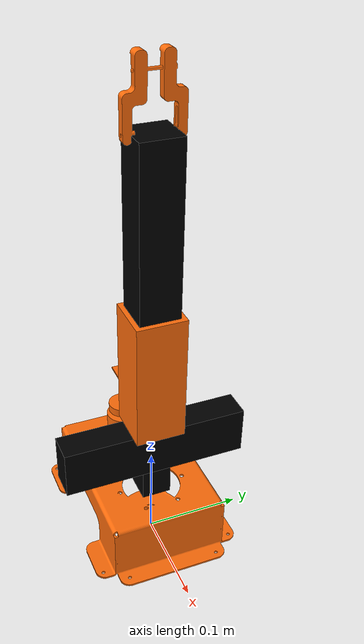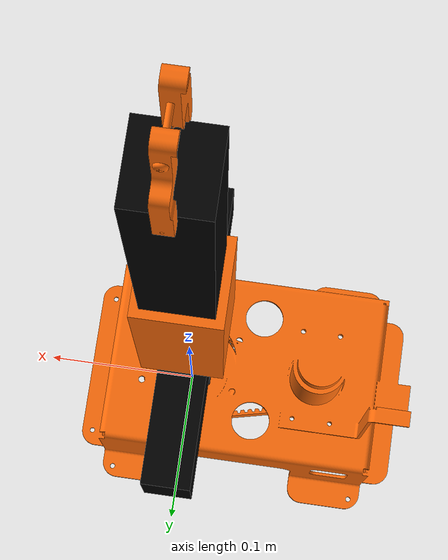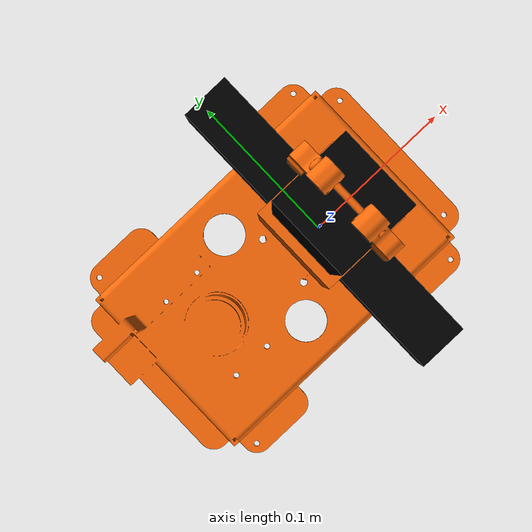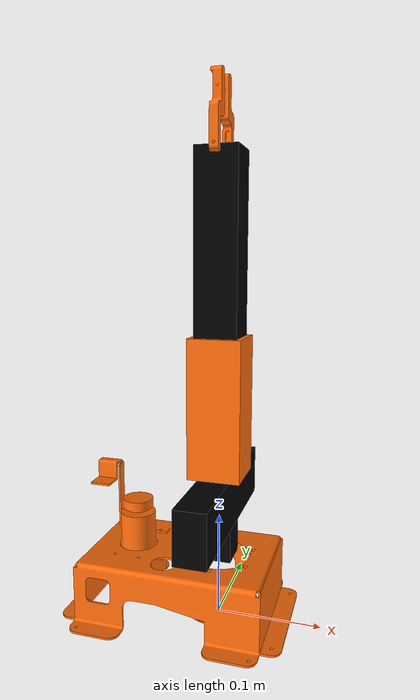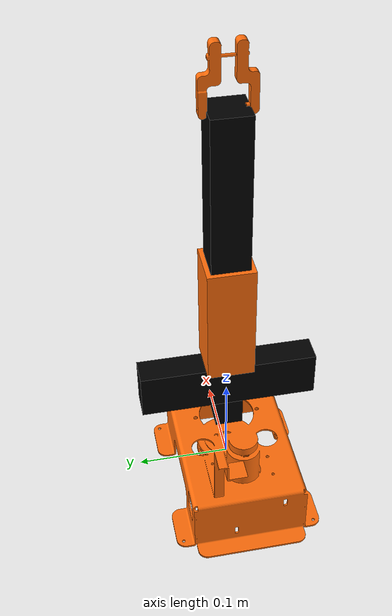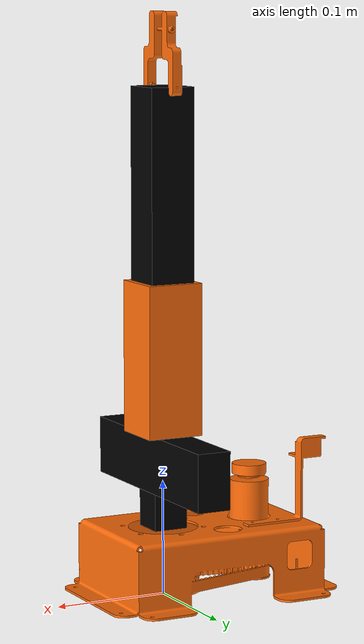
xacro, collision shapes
<?xml version="1.0"?>
<robot name="robotarm" xmlns:xacro="http://www.ros.org/wiki/xacro">

  <xacro:property name="PI" value="3.14159265"/>
  <xacro:property name="PI_half" value="1.57079632"/>
  <xacro:property name="link0_mass" value="3"/>
  <xacro:property name="link0_x" value="0.15"/>
  <xacro:property name="link0_y" value="0.2"/>
  <xacro:property name="link0_z" value="0.06"/>
  <xacro:property name="link1_mass" value="0.8"/>
  <xacro:property name="link1_x" value="0.11"/>
  <xacro:property name="link1_y" value="0.05"/>
  <xacro:property name="link1_z" value="0.08"/>
  <xacro:property name="link2_mass" value="0.405"/>
  <xacro:property name="link2_x" value="0.04"/>
  <xacro:property name="link2_y" value="0.05"/>
  <xacro:property name="link2_z" value="0.17"/>
  <xacro:property name="link3_mass" value="0.2"/>
  <xacro:property name="link3_x" value="0.02"/>
  <xacro:property name="link3_y" value="0.04"/>
  <xacro:property name="link3_z" value="0.17"/>
  <xacro:property name="link4_mass" value="0.01"/>
  <xacro:property name="link4_x" value="0.03"/>
  <xacro:property name="link4_y" value="0.01"/>
  <xacro:property name="link4_z" value="0.06"/>

  <xacro:include filename="$(find myrobot)/urdf/myrobot.gazebo" />
  <xacro:include filename="$(find myrobot)/urdf/materials.xacro" />

  <link name="world"/>

  <joint name="fixed" type="fixed">
    <parent link="world"/>
    <child link="link0"/>
  </joint>

  <link name="link0">
     <visual>
       <origin xyz="-0.037 0 0" rpy="0 0 ${PI/2}"/>
       <geometry>
        <mesh filename="file://$(find myrobot)/meshes/link0_fake_longer.stl" scale="0.001 0.001 0.001"/>
       </geometry>
       <material name="orange"/>
     </visual>
     <collision>
       <origin xyz="-0.037 0 0" rpy="0 0 ${PI_half}"/>
       <geometry>
        <mesh filename="file://$(find myrobot)/meshes/link0_fake_longer.stl" scale="0.001 0.001 0.001"/>
       </geometry>
     </collision>
     <inertial>
        <origin xyz="-0.037 0 ${0.06/2}" rpy="0 0 ${PI_half}"/>
       <mass value="${link0_mass}"/>
       <inertia
          ixx="1.0" ixy="0.0" ixz="0.0"
          iyy="1.0" iyz="0.0"
          izz="1.0"/>
     </inertial>
   </link>

  <joint name="joint1" type="revolute">
    <parent link="link0"/>
    <child link="link1"/>
    <origin xyz="0 0 0.06" rpy="0 0 0"/>
    <axis xyz="0 0 1"/>
    <dynamics damping="1.0" friction="1.33136"/>
    <limit effort="3.36343" lower="-1.2" upper="1.2" velocity="2.71224"/>
  </joint>

  <link name="link1">
    <visual>
      <origin xyz="0 0 0" rpy="0 0 ${PI_half}"/>
      <geometry>
        <mesh filename="file://$(find myrobot)/meshes/link1.stl" scale="0.001 0.001 0.001"/>
      </geometry>
      <material name="black"/>
    </visual>
    <collision>
      <origin xyz="0 0 ${0.032/2}" rpy="0 0 ${PI_half}"/>
      <geometry>
      <box size="0.03 0.03 0.032"/>
      </geometry>
    </collision>
    <collision>
      <origin xyz="0 0 ${0.032+0.05/2}" rpy="0 0 ${PI_half}"/>
      <geometry>
      <box size="0.19 0.03 0.05"/>
      </geometry>
    </collision>
    <inertial>
      <origin xyz="0 0 ${0.082/2}" rpy="0 0 ${PI_half}"/>
      <mass value="${link1_mass}"/>
      <inertia
          ixx="${link1_mass / 12.0 * (0.01*0.01*2)}" ixy="0.0" ixz="0.0"
          iyy="${link1_mass / 12.0 * (0.01*0.01*2)}" iyz="0.0"
          izz="${link1_mass / 12.0 * (0.01*0.01 + 0.082*0.082)}"/>
    </inertial>
  </link>

  <joint name="joint2" type="revolute">
     <parent link="link1"/>
     <child link="link2"/>
     <origin xyz=" 0 0 0.082" rpy="0 0 0"/>
     <axis xyz="0 1 0"/>
     <dynamics damping="1.0" friction="2.329875"/>
     <limit effort="5.886" lower="-2" upper="2" velocity="1.54985"/>
   </joint>

  <link name="link2">
    <visual>
      <origin xyz="0 0 0" rpy="0 0 ${PI_half}"/>
      <geometry>
        <mesh filename="file://$(find myrobot)/meshes/link2.stl" scale="0.001 0.001 0.001"/>
      </geometry>
      <material name="orange"/>
    </visual>
    <collision>
      <origin xyz="0 0 ${0.132/2}" rpy="0 0 ${PI_half}"/>
      <geometry>
        <box size="0.05 0.05 0.132"/>
      </geometry>
    </collision>
    <inertial>
     <origin xyz="0 0 ${0.132/2}" rpy="0 0 ${PI_half}"/>
      <mass value="${link2_mass}"/>
      <inertia
          ixx="${link2_mass / 12.0 * (link2_z*link2_z + link2_y*link2_y)}" ixy="0.0" ixz="0.0"
          iyy="${link2_mass / 12.0 * (link2_z*link2_z + link2_y*link2_x)}" iyz="0.0"
          izz="${link2_mass / 12.0 * (link2_x*link2_x + link2_y*link2_y)}"/>
    </inertial>
  </link>

  <joint name="joint3" type="revolute">
     <parent link="link2"/>
     <child link="link3"/>
     <origin xyz="0 0 0.132" rpy="0 0 0"/>
     <axis xyz="0 1 0"/>
     <dynamics damping="1.0" friction="1.176032"/>
     <limit effort="4.20429" lower="-1.67" upper="1.67" velocity="2.75622"/>
   </joint>

  <link name="link3">
    <visual>
      <origin xyz="0 0 0" rpy="0 0 ${PI_half}"/>
      <geometry>
        <mesh filename="file://$(find myrobot)/meshes/link3.stl" scale="0.001 0.001 0.001"/>
      </geometry>
      <material name="black"/>
    </visual>
    <collision>
      <origin xyz="0 0 ${0.1664/2}" rpy="0 0 ${PI_half}"/>
      <geometry>
        <box size="0.04 0.04 0.1664"/>
      </geometry>
    </collision>
    <inertial>
     <origin xyz="0 0 ${0.1664/2}" rpy="0 0 ${PI_half}"/>
      <mass value="${link3_mass}"/>
      <inertia
          ixx="${link3_mass / 12.0 * (link3_z*link3_z + link3_y*link3_y)}" ixy="0.0" ixz="0.0"
          iyy="${link3_mass / 12.0 * (link3_z*link3_z + link3_y*link3_x)}" iyz="0.0"
          izz="${link3_mass / 12.0 * (link3_x*link3_x + link3_y*link3_y)}"/>
    </inertial>
  </link>

  <joint name="joint4" type="revolute">
     <parent link="link3"/>
     <child link="link4"/>
     <origin xyz="0 0 0.1664" rpy="0 0 0"/>
     <axis xyz="0 1 0"/>
     <dynamics damping="1.0" friction="0.07"/>
     <limit effort="0.1962" lower="${-PI_half}" upper="${PI_half}" velocity="10.47198"/>
   </joint>

  <link name="link4">
    <visual>
      <origin xyz="0 0 0" rpy="0 0 ${PI_half}"/>
      <geometry>
        <mesh filename="file://$(find myrobot)/meshes/link4.stl" scale="0.001 0.001 0.001"/>
      </geometry>
      <material name="orange"/>
    </visual>
    <collision>
      <origin xyz="0 0 0" rpy="0 0 ${PI_half}"/>
      <geometry>
        <mesh filename="file://$(find myrobot)/meshes/link4.stl" scale="0.001 0.001 0.001"/>
      </geometry>
    </collision>
    <inertial>
     <origin xyz="0 0 ${0.06/2}" rpy="0 0 ${PI_half}"/>
      <mass value="${link4_mass}"/>
      <inertia
          ixx="${link4_mass / 12.0 * (link4_z*link4_z + link4_y*link4_y)}" ixy="0.0" ixz="0.0"
          iyy="${link4_mass / 12.0 * (link4_z*link4_z + link4_y*link4_x)}" iyz="0.0"
          izz="${link4_mass / 12.0 * (link4_x*link4_x + link4_y*link4_y)}"/>
    </inertial>
  </link>

  <joint name="joint5" type="fixed">
     <parent link="link4"/>
     <child link="link5"/>
     <origin xyz="0.004 0 0.048" rpy="0 0 0"/>
   </joint>

  <link name="link5">
  </link>

  <transmission name="tran1">
    <type>transmission_interface/SimpleTransmission</type>
    <joint name="joint1">
      <hardwareInterface>hardware_interface/PositionJointInterface</hardwareInterface>
    </joint>
    <actuator name="motor1">
      <hardwareInterface>hardware_interface/PositionJointInterface</hardwareInterface>
      <mechanicalReduction>1</mechanicalReduction>
    </actuator>
  </transmission>

  <transmission name="tran2">
    <type>transmission_interface/SimpleTransmission</type>
    <joint name="joint2">
      <hardwareInterface>hardware_interface/PositionJointInterface</hardwareInterface>
    </joint>
    <actuator name="motor2">
      <hardwareInterface>hardware_interface/PositionJointInterface</hardwareInterface>
      <mechanicalReduction>1</mechanicalReduction>
    </actuator>
  </transmission>

  <transmission name="tran3">
    <type>transmission_interface/SimpleTransmission</type>
    <joint name="joint3">
      <hardwareInterface>hardware_interface/PositionJointInterface</hardwareInterface>
    </joint>
    <actuator name="motor3">
      <hardwareInterface>hardware_interface/PositionJointInterface</hardwareInterface>
      <mechanicalReduction>1</mechanicalReduction>
    </actuator>
  </transmission>

  <transmission name="tran4">
    <type>transmission_interface/SimpleTransmission</type>
    <joint name="joint4">
      <hardwareInterface>hardware_interface/PositionJointInterface</hardwareInterface>
    </joint>
    <actuator name="motor4">
      <hardwareInterface>hardware_interface/PositionJointInterface</hardwareInterface>
      <mechanicalReduction>1</mechanicalReduction>
    </actuator>
  </transmission>

  <ros2_control name="GazeboSystem" type="system">
    <hardware>
      <plugin>gazebo_ros2_control/GazeboSystem</plugin>
    </hardware>
    <joint name="joint1">
      <command_interface name="position"/>
      <state_interface name="position"/>
      <state_interface name="velocity"/>
    </joint>
    <joint name="joint2">
      <command_interface name="position"/>
      <state_interface name="position"/>
      <state_interface name="velocity"/>
    </joint>
    <joint name="joint3">
      <command_interface name="position"/>
      <state_interface name="position"/>
      <state_interface name="velocity"/>
    </joint>
    <joint name="joint4">
      <command_interface name="position"/>
      <state_interface name="position"/>
      <state_interface name="velocity"/>
    </joint>
  </ros2_control>

</robot>

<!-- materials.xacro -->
<!--note that the color description of this file is for Rviz,gazebo color description is in myrobot.gazebo-->
<robot>

  <material name="black">
    <color rgba="0.0 0.0 0.0 1.0"/>
  </material>

  <material name="blue">
    <color rgba="0.0 0.0 0.8 1.0"/>
  </material>

  <material name="green">
    <color rgba="0.0 0.8 0.0 1.0"/>
  </material>

  <material name="grey">
    <color rgba="0.2 0.2 0.2 1.0"/>
  </material>

  <material name="orange">
    <color rgba="${255/255} ${108/255} ${10/255} 1.0"/>
  </material>

  <material name="brown">
    <color rgba="${222/255} ${207/255} ${195/255} 1.0"/>
  </material>

  <material name="red">
    <color rgba="0.8 0.0 0.0 1.0"/>
  </material>

  <material name="white">
    <color rgba="1.0 1.0 1.0 1.0"/>
  </material>

</robot>
